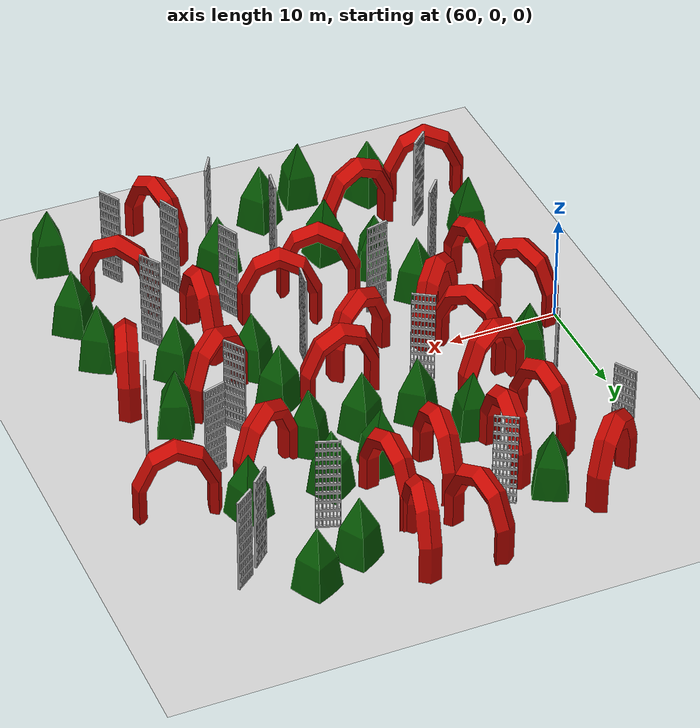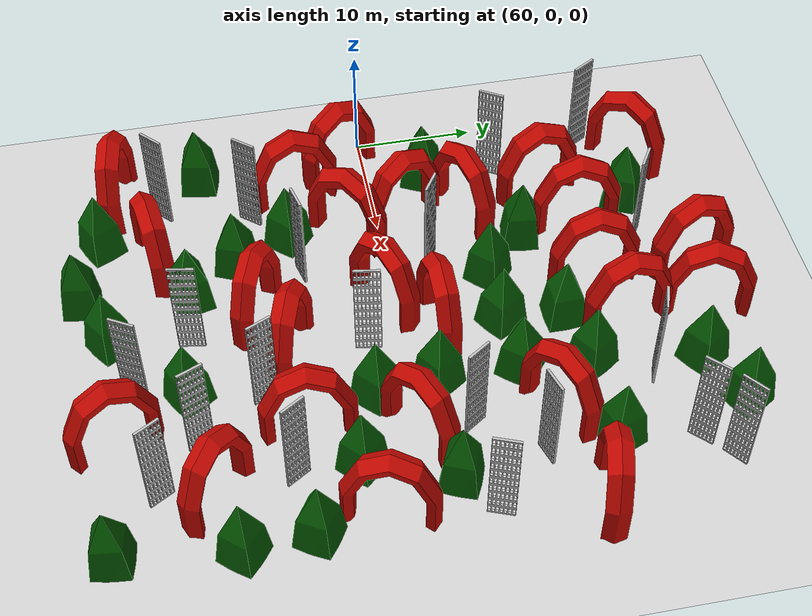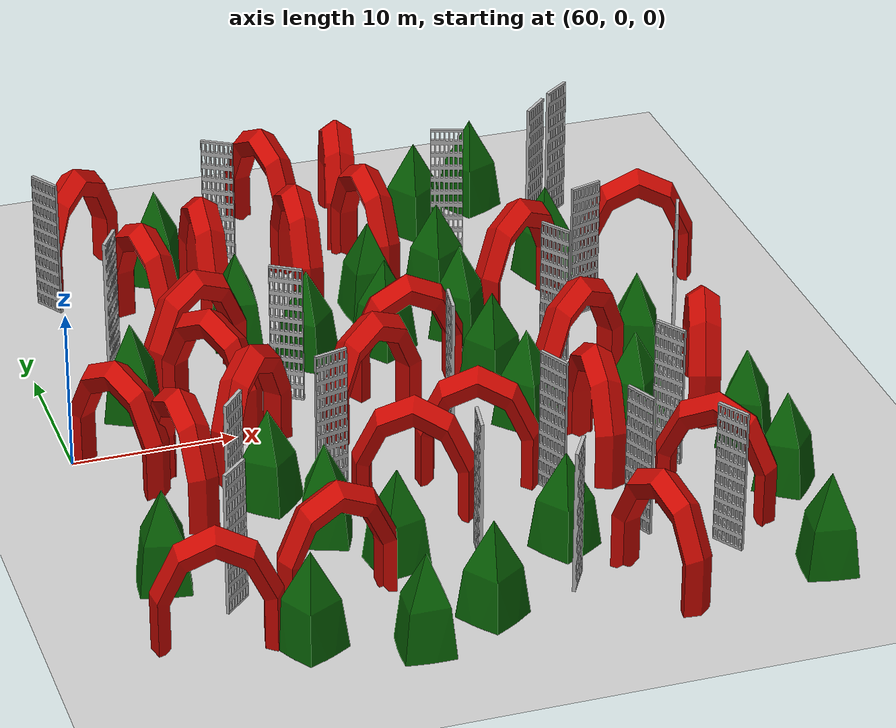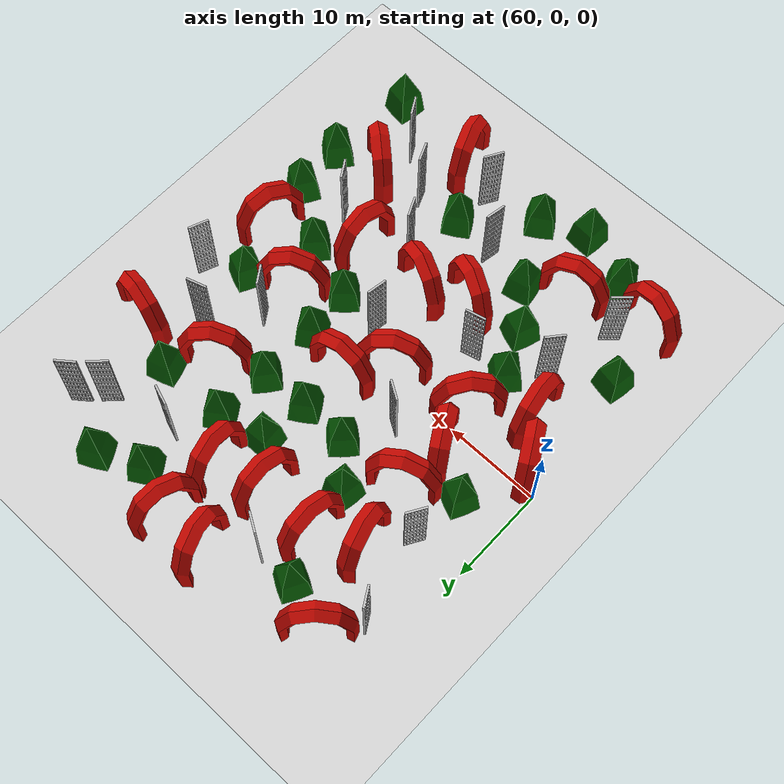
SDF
<sdf version="1.4">
 <world name="default">
  <model name="ground_plane">
   <static>1</static>
   <link name="link">
    <collision name="collision">
     <geometry><plane><normal>0 0 1</normal><size>1000 1000</size></plane></geometry>
     <surface>
      <contact><collide_bitmask>65535</collide_bitmask></contact>
      <friction><ode><mu>100</mu><mu2>50</mu2></ode></friction>
     </surface>
    </collision>
    <visual name="visual">
     <cast_shadows>0</cast_shadows>
     <geometry><plane><normal>0 0 1</normal><size>1000 1000</size></plane></geometry>
    </visual>
   </link>
  </model>
  <include><uri>model://sun</uri></include>
  <include>
   <name>mixedSimple U18</name>
   <uri>model://Simple U</uri>
   <pose>63.16553211212158 -21.04192042350769 0 0 0 6.06168131998</pose>
   <static>true</static>
  </include>
  <include>
   <name>mixedSimple Pyramid19</name>
   <uri>model://Simple Pyramid</uri>
   <pose>61.92378044128418 -14.115174293518066 0 0 0 2.17522607138</pose>
   <static>true</static>
  </include>
  <include>
   <name>mixedSimple U20</name>
   <uri>model://Simple U</uri>
   <pose>62.39281940460205 -1.99932861328125 0 0 0 2.09566750317</pose>
   <static>true</static>
  </include>
  <include>
   <name>mixedfence_high21</name>
   <uri>model://fence_high</uri>
   <pose>63.591267585754395 18.13353729248047 0 0 0 0.540195396596</pose>
   <static>true</static>
  </include>
  <include>
   <name>mixedfence_high23</name>
   <uri>model://fence_high</uri>
   <pose>66.04823875427246 -16.95046329498291 0 0 0 2.33245872576</pose>
   <static>true</static>
  </include>
  <include>
   <name>mixedfence_high24</name>
   <uri>model://fence_high</uri>
   <pose>66.40992164611816 -11.089359283447266 0 0 0 5.5859719593</pose>
   <static>true</static>
  </include>
  <include>
   <name>mixedSimple U25</name>
   <uri>model://Simple U</uri>
   <pose>65.11209106445312 -6.201183319091797 0 0 0 4.84418113532</pose>
   <static>true</static>
  </include>
  <include>
   <name>mixedSimple Pyramid26</name>
   <uri>model://Simple Pyramid</uri>
   <pose>64.87923240661621 4.755619049072266 0 0 0 1.91788426219</pose>
   <static>true</static>
  </include>
  <include>
   <name>mixedfence_high27</name>
   <uri>model://fence_high</uri>
   <pose>64.55067348480225 9.749824523925781 0 0 0 5.74117613742</pose>
   <static>true</static>
  </include>
  <include>
   <name>mixedSimple U28</name>
   <uri>model://Simple U</uri>
   <pose>65.82725524902344 22.61130142211914 0 0 0 3.88593585093</pose>
   <static>true</static>
  </include>
  <include>
   <name>mixedSimple Pyramid29</name>
   <uri>model://Simple Pyramid</uri>
   <pose>68.01292037963867 -22.77756142616272 0 0 0 5.97991541276</pose>
   <static>true</static>
  </include>
  <include>
   <name>mixedSimple U30</name>
   <uri>model://Simple U</uri>
   <pose>70.77280807495117 -18.602272033691406 0 0 0 3.322677894</pose>
   <static>true</static>
  </include>
  <include>
   <name>mixedSimple Pyramid31</name>
   <uri>model://Simple Pyramid</uri>
   <pose>69.93556022644043 -7.5369110107421875 0 0 0 3.17161701484</pose>
   <static>true</static>
  </include>
  <include>
   <name>mixedSimple U32</name>
   <uri>model://Simple U</uri>
   <pose>70.34915542602539 -2.5490283966064453 0 0 0 3.95296389483</pose>
   <static>true</static>
  </include>
  <include>
   <name>mixedSimple U33</name>
   <uri>model://Simple U</uri>
   <pose>69.26058197021484 2.3361568450927734 0 0 0 2.10609253647</pose>
   <static>true</static>
  </include>
  <include>
   <name>mixedSimple U34</name>
   <uri>model://Simple U</uri>
   <pose>69.58851051330566 7.330402374267578 0 0 0 0.437818730636</pose>
   <static>true</static>
  </include>
  <include>
   <name>mixedSimple U35</name>
   <uri>model://Simple U</uri>
   <pose>68.1234302520752 14.158077239990234 0 0 0 1.80417766201</pose>
   <static>true</static>
  </include>
  <include>
   <name>mixedSimple Pyramid36</name>
   <uri>model://Simple Pyramid</uri>
   <pose>70.57273292541504 21.020557403564453 0 0 0 5.01020151035</pose>
   <static>true</static>
  </include>
  <include>
   <name>mixedSimple Pyramid37</name>
   <uri>model://Simple Pyramid</uri>
   <pose>73.9485912322998 -24.83971670269966 0 0 0 3.84379812249</pose>
   <static>true</static>
  </include>
  <include>
   <name>mixedSimple Pyramid38</name>
   <uri>model://Simple Pyramid</uri>
   <pose>71.97026062011719 -12.109658241271973 0 0 0 1.98679219875</pose>
   <static>true</static>
  </include>
  <include>
   <name>mixedSimple Pyramid39</name>
   <uri>model://Simple Pyramid</uri>
   <pose>73.28182983398438 11.480194091796875 0 0 0 5.35580607006</pose>
   <static>true</static>
  </include>
  <include>
   <name>mixedSimple U40</name>
   <uri>model://Simple U</uri>
   <pose>72.58013343811035 16.435760498046875 0 0 0 4.66626298291</pose>
   <static>true</static>
  </include>
  <include>
   <name>mixedSimple Pyramid41</name>
   <uri>model://Simple Pyramid</uri>
   <pose>75.07119178771973 -16.038304328918457 0 0 0 4.13009004009</pose>
   <static>true</static>
  </include>
  <include>
   <name>mixedSimple U42</name>
   <uri>model://Simple U</uri>
   <pose>77.72700881958008 -11.066787719726562 0 0 0 2.69393444758</pose>
   <static>true</static>
  </include>
  <include>
   <name>mixedfence_high43</name>
   <uri>model://fence_high</uri>
   <pose>74.9776382446289 -6.884565353393555 0 0 0 1.81326027197</pose>
   <static>true</static>
  </include>
  <include>
   <name>mixedfence_high44</name>
   <uri>model://fence_high</uri>
   <pose>75.14645195007324 2.955474853515625 0 0 0 1.00746279036</pose>
   <static>true</static>
  </include>
  <include>
   <name>mixedSimple Pyramid45</name>
   <uri>model://Simple Pyramid</uri>
   <pose>76.80620956420898 7.926494598388672 0 0 0 0.0355396143127</pose>
   <static>true</static>
  </include>
  <include>
   <name>mixedfence_high46</name>
   <uri>model://fence_high</uri>
   <pose>75.65340042114258 20.38608169555664 0 0 0 1.02241808259</pose>
   <static>true</static>
  </include>
  <include>
   <name>mixedSimple Pyramid47</name>
   <uri>model://Simple Pyramid</uri>
   <pose>78.52388000488281 -22.810734272003174 0 0 0 6.09101511847</pose>
   <static>true</static>
  </include>
  <include>
   <name>mixedfence_high48</name>
   <uri>model://fence_high</uri>
   <pose>80.04731559753418 -15.501447677612305 0 0 0 2.97493217526</pose>
   <static>true</static>
  </include>
  <include>
   <name>mixedSimple U49</name>
   <uri>model://Simple U</uri>
   <pose>78.33199119567871 -0.9048824310302734 0 0 0 3.63725123055</pose>
   <static>true</static>
  </include>
  <include>
   <name>mixedSimple U50</name>
   <uri>model://Simple U</uri>
   <pose>81.64715194702148 2.8447494506835938 0 0 0 3.20744676791</pose>
   <static>true</static>
  </include>
  <include>
   <name>mixedSimple Pyramid51</name>
   <uri>model://Simple Pyramid</uri>
   <pose>81.81057929992676 7.847080230712891 0 0 0 1.36085706795</pose>
   <static>true</static>
  </include>
  <include>
   <name>mixedSimple U52</name>
   <uri>model://Simple U</uri>
   <pose>78.6216926574707 16.265094757080078 0 0 0 4.66722684098</pose>
   <static>true</static>
  </include>
  <include>
   <name>mixedSimple U53</name>
   <uri>model://Simple U</uri>
   <pose>78.69350051879883 24.502304077148438 0 0 0 4.9776581031</pose>
   <static>true</static>
  </include>
  <include>
   <name>mixedfence_high54</name>
   <uri>model://fence_high</uri>
   <pose>83.47211074829102 -22.059043169021606 0 0 0 5.75393349384</pose>
   <static>true</static>
  </include>
  <include>
   <name>mixedSimple Pyramid55</name>
   <uri>model://Simple Pyramid</uri>
   <pose>84.74821472167969 -17.21945858001709 0 0 0 2.89693204001</pose>
   <static>true</static>
  </include>
  <include>
   <name>mixedSimple U56</name>
   <uri>model://Simple U</uri>
   <pose>82.2685432434082 -8.963338851928711 0 0 0 5.90734520175</pose>
   <static>true</static>
  </include>
  <include>
   <name>mixedfence_high57</name>
   <uri>model://fence_high</uri>
   <pose>82.2975845336914 -3.958423614501953 0 0 0 6.12624955518</pose>
   <static>true</static>
  </include>
  <include>
   <name>mixedSimple Pyramid58</name>
   <uri>model://Simple Pyramid</uri>
   <pose>82.26324462890625 12.83156967163086 0 0 0 2.4006733769</pose>
   <static>true</static>
  </include>
  <include>
   <name>mixedSimple U59</name>
   <uri>model://Simple U</uri>
   <pose>83.59886932373047 17.655067443847656 0 0 0 4.83966399527</pose>
   <static>true</static>
  </include>
  <include>
   <name>mixedSimple U60</name>
   <uri>model://Simple U</uri>
   <pose>83.68975067138672 24.20650863647461 0 0 0 1.37373219978</pose>
   <static>true</static>
  </include>
  <include>
   <name>mixedSimple U61</name>
   <uri>model://Simple U</uri>
   <pose>88.39469528198242 -22.96358609199524 0 0 0 5.03037330034</pose>
   <static>true</static>
  </include>
  <include>
   <name>mixedfence_high62</name>
   <uri>model://fence_high</uri>
   <pose>86.3854751586914 -12.489828109741211 0 0 0 0.44760186236</pose>
   <static>true</static>
  </include>
  <include>
   <name>mixedSimple Pyramid63</name>
   <uri>model://Simple Pyramid</uri>
   <pose>87.24473571777344 -3.199666976928711 0 0 0 6.25434100798</pose>
   <static>true</static>
  </include>
  <include>
   <name>mixedSimple Pyramid64</name>
   <uri>model://Simple Pyramid</uri>
   <pose>86.78568267822266 1.7842369079589844 0 0 0 4.49245768922</pose>
   <static>true</static>
  </include>
  <include>
   <name>mixedSimple Pyramid65</name>
   <uri>model://Simple Pyramid</uri>
   <pose>86.8032341003418 8.198368072509766 0 0 0 1.66290044898</pose>
   <static>true</static>
  </include>
  <include>
   <name>mixedSimple Pyramid66</name>
   <uri>model://Simple Pyramid</uri>
   <pose>87.15793991088867 13.87656021118164 0 0 0 1.35589019257</pose>
   <static>true</static>
  </include>
  <include>
   <name>mixedSimple Pyramid67</name>
   <uri>model://Simple Pyramid</uri>
   <pose>88.37782669067383 22.453807830810547 0 0 0 4.49720575249</pose>
   <static>true</static>
  </include>
  <include>
   <name>mixedfence_high68</name>
   <uri>model://fence_high</uri>
   <pose>89.72132110595703 -17.783577919006348 0 0 0 0.41557415426</pose>
   <static>true</static>
  </include>
  <include>
   <name>mixedSimple U69</name>
   <uri>model://Simple U</uri>
   <pose>89.64344024658203 -8.69039535522461 0 0 0 4.6590477297</pose>
   <static>true</static>
  </include>
  <include>
   <name>mixedSimple U70</name>
   <uri>model://Simple U</uri>
   <pose>91.54465103149414 -0.6382732391357422 0 0 0 0.559011905737</pose>
   <static>true</static>
  </include>
  <include>
   <name>mixedfence_high71</name>
   <uri>model://fence_high</uri>
   <pose>90.97767639160156 4.518684387207031 0 0 0 3.74471897935</pose>
   <static>true</static>
  </include>
  <include>
   <name>mixedSimple U72</name>
   <uri>model://Simple U</uri>
   <pose>91.4194107055664 10.132518768310547 0 0 0 0.572434782576</pose>
   <static>true</static>
  </include>
  <include>
   <name>mixedfence_high73</name>
   <uri>model://fence_high</uri>
   <pose>90.25003433227539 17.812164306640625 0 0 0 1.24462426102</pose>
   <static>true</static>
  </include>
  <include>
   <name>mixedfence_high74</name>
   <uri>model://fence_high</uri>
   <pose>94.11167526245117 -21.04796290397644 0 0 0 0.53564786114</pose>
   <static>true</static>
  </include>
  <include>
   <name>mixedSimple U75</name>
   <uri>model://Simple U</uri>
   <pose>94.41735458374023 -16.052306175231934 0 0 0 2.42937617795</pose>
   <static>true</static>
  </include>
  <include>
   <name>mixedfence_high76</name>
   <uri>model://fence_high</uri>
   <pose>94.20627975463867 -11.051758766174316 0 0 0 0.568831955478</pose>
   <static>true</static>
  </include>
  <include>
   <name>mixedSimple Pyramid77</name>
   <uri>model://Simple Pyramid</uri>
   <pose>93.36255645751953 -5.341037750244141 0 0 0 3.16347300113</pose>
   <static>true</static>
  </include>
  <include>
   <name>mixedSimple Pyramid78</name>
   <uri>model://Simple Pyramid</uri>
   <pose>94.51828002929688 14.062793731689453 0 0 0 5.81445463818</pose>
   <static>true</static>
  </include>
  <include>
   <name>mixedfence_high79</name>
   <uri>model://fence_high</uri>
   <pose>95.04904174804688 19.233280181884766 0 0 0 5.4891577796</pose>
   <static>true</static>
  </include>
  <include>
   <name>mixedSimple Pyramid80</name>
   <uri>model://Simple Pyramid</uri>
   <pose>92.92145538330078 24.55272674560547 0 0 0 2.84686384235</pose>
   <static>true</static>
  </include>
  <include>
   <name>mixedSimple Pyramid81</name>
   <uri>model://Simple Pyramid</uri>
   <pose>98.2195053100586 -23.907288432121277 0 0 0 5.33659330399</pose>
   <static>true</static>
  </include>
  <include>
   <name>mixedSimple Pyramid82</name>
   <uri>model://Simple Pyramid</uri>
   <pose>99.2663459777832 -14.812426567077637 0 0 0 3.24561509009</pose>
   <static>true</static>
  </include>
  <include>
   <name>mixedSimple Pyramid83</name>
   <uri>model://Simple Pyramid</uri>
   <pose>98.92613220214844 -9.386524200439453 0 0 0 4.92827506075</pose>
   <static>true</static>
  </include>
  <include>
   <name>mixedSimple U84</name>
   <uri>model://Simple U</uri>
   <pose>98.20878601074219 -4.090402603149414 0 0 0 1.25998013907</pose>
   <static>true</static>
  </include>
  <include>
   <name>mixedSimple Pyramid85</name>
   <uri>model://Simple Pyramid</uri>
   <pose>96.05437469482422 1.5325355529785156 0 0 0 0.371951387633</pose>
   <static>true</static>
  </include>
  <include>
   <name>mixedfence_high86</name>
   <uri>model://fence_high</uri>
   <pose>96.12604904174805 8.430294036865234 0 0 0 1.87114625141</pose>
   <static>true</static>
  </include>
  <include>
   <name>mixedfence_high87</name>
   <uri>model://fence_high</uri>
   <pose>98.88639068603516 22.446495056152344 0 0 0 2.23503328547</pose>
   <static>true</static>
  </include>
  <include>
   <name>mixedfence_high88</name>
   <uri>model://fence_high</uri>
   <pose>99.9424057006836 4.684242248535156 0 0 0 2.76852740034</pose>
   <static>true</static>
  </include>
  <include>
   <name>mixedSimple U89</name>
   <uri>model://Simple U</uri>
   <pose>99.87271499633789 11.74880599975586 0 0 0 2.93881310761</pose>
   <static>true</static>
  </include>
 </world>
</sdf>
